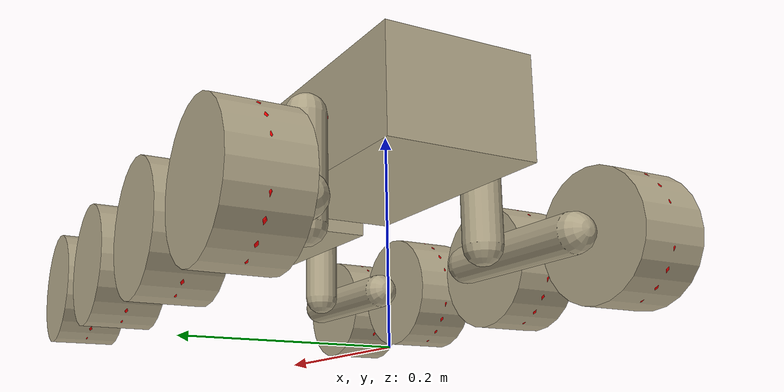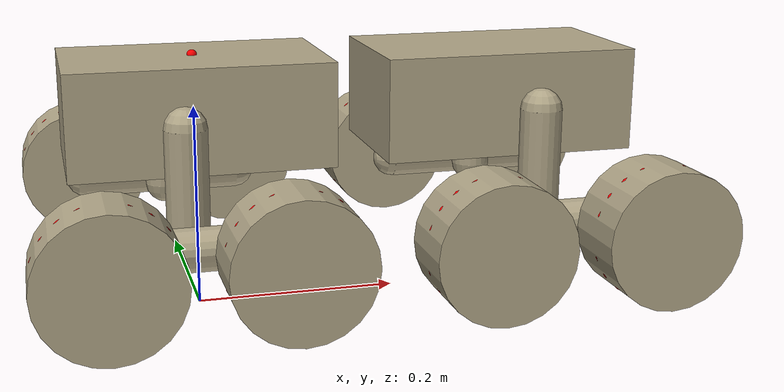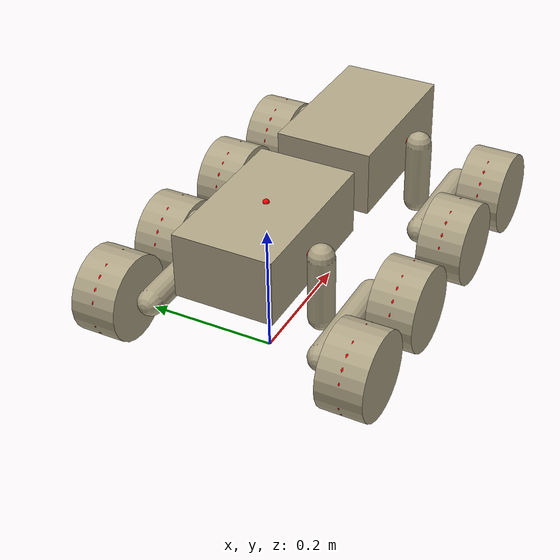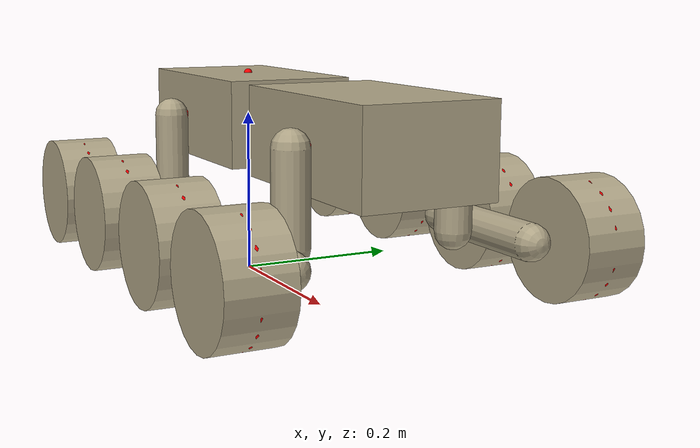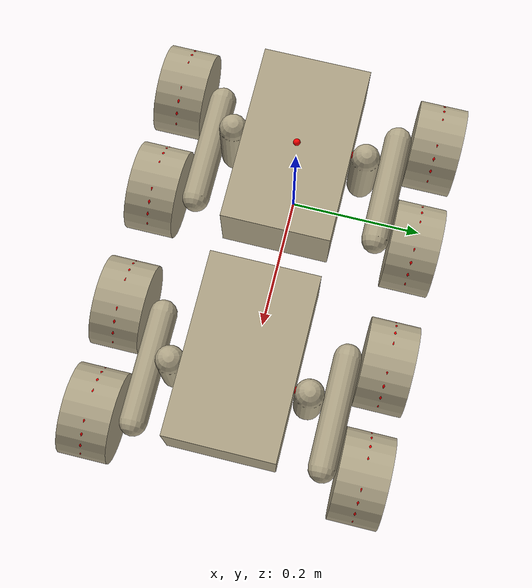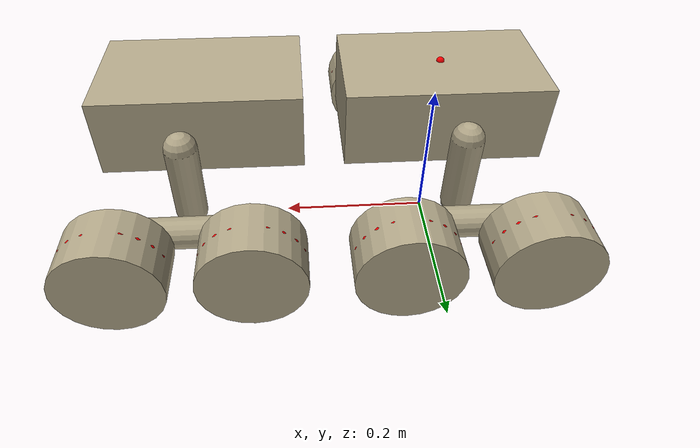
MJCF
<mujoco model="MuJoCo Model">
  <compiler angle="radian"/>

  <option iterations="3" ls_iterations="5" timestep=".002" integrator="Euler">
    <flag eulerdamp="disable"/>
  </option>

  <default>
  	<geom condim="3" contype="0" conaffinity="0"/>
  </default>

  <worldbody>
    <body name="torso" pos="0 0 0.2">
      <joint name="torso_joint" type="free" limited="false" actuatorfrclimited="false"/>
      <site name="torso_site" pos="0 0 0.05" type="sphere" rgba="1 0 0 1"/>
      <geom size="0.125 0.075 0.05" type="box" mass="10" rgba="0.694118 0.65098 0.533333 1" contype="0" conaffinity="1"/>
      <body name="torso_left_thigh" pos="-0.02 0.075 0">
        <joint name="torso_left_thigh_joint" pos="0 0 0" axis="0 1 0" armature="0.0072" damping="5"/>
        <geom name="torso_left_thigh_geom" size="0.02 0.05" pos="0 0.02 -0.05" type="capsule" mass="0.5" rgba="0.694118 0.65098 0.533333 1"/>
        <site name="tl_thigh_site" pos="0 0 0" rgba="1 0 0 1"/>
        <body name="torso_left_shin" pos="0 0.06 -0.1">
          <joint name="torso_left_thigh_shin_joint" pos="0 0 0" axis="0 1 0" armature="0.01805" damping="5"/>
          <geom name="torso_left_shin_geom" size="0.02 0.08" quat="0.707107 0 0.707107 0" type="capsule" mass="0.5" rgba="0.694118 0.65098 0.533333 1"/>
          <site name="tl_shin_site" pos="0 0 0" rgba="1 0 0 1"/>
          <body name="torso_left_front_wheel" pos="0.08 0.055 0">
            <geom name="torso_left_front_wheel_geom" size="0.065 0.035" quat="0.707107 0.707107 0 0" type="cylinder" solref="0.2 0.5" mass="0.5" rgba="0.694118 0.65098 0.533333 1" contype="0" conaffinity="1"/>
            <site name="tlf_wheel_site" pos="0 0 0" size="0.065 0.065 0.035" quat="0.707107 0.707107 0 0" type="ellipsoid" rgba="1 0 0 1"/>
          </body>
          <body name="torso_left_rear_wheel" pos="-0.08 0.055 0">
            <geom name="torso_left_rear_wheel_geom" size="0.065 0.035" quat="0.707107 0.707107 0 0" type="cylinder" solref="0.2 0.5" mass="0.5" rgba="0.694118 0.65098 0.533333 1" contype="0" conaffinity="1"/>
            <site name="tlr_wheel_site" pos="0 0 0" size="0.065 0.065 0.035" quat="0.707107 0.707107 0 0" type="ellipsoid" rgba="1 0 0 1"/>
          </body>
        </body>
      </body>
      <body name="torso_right_thigh" pos="-0.02 -0.075 0">
        <joint name="torso_right_thigh_joint" pos="0 0 0" axis="0 1 0" armature="0.0072" damping="5"/>
        <geom name="torso_right_thigh_geom" size="0.02 0.05" pos="0 -0.02 -0.05" type="capsule" mass="0.5" rgba="0.694118 0.65098 0.533333 1"/>
        <site name="tr_thigh_site" pos="0 0 0" rgba="1 0 0 1"/>
        <body name="torso_right_shin" pos="0 -0.06 -0.1">
          <joint name="torso_right_thigh_shin_joint" pos="0 0 0" axis="0 1 0" armature="0.01805" damping="5"/>
          <geom name="torso_right_shin_geom" size="0.02 0.08" quat="0.707107 0 0.707107 0" type="capsule" mass="0.5" rgba="0.694118 0.65098 0.533333 1"/>
          <site name="tr_shin_site" pos="0 0 0" rgba="1 0 0 1"/>
          <body name="torso_right_front_wheel" pos="0.08 -0.055 0">
            <geom name="torso_right_front_wheel_geom" size="0.065 0.035" quat="0.707107 0.707107 0 0" type="cylinder" solref="0.2 0.5" mass="0.5" rgba="0.694118 0.65098 0.533333 1" contype="0" conaffinity="1"/>
            <site name="trf_wheel_site" pos="0 0 0" size="0.065 0.065 0.035" quat="0.707107 0.707107 0 0" type="ellipsoid" rgba="1 0 0 1"/>
          </body>
          <body name="torso_right_rear_wheel" pos="-0.08 -0.055 0">
            <geom name="torso_right_rear_wheel_geom" size="0.065 0.035" quat="0.707107 0.707107 0 0" type="cylinder" solref="0.2 0.5" mass="0.5" rgba="0.694118 0.65098 0.533333 1" contype="0" conaffinity="1"/>
            <site name="trr_wheel_site" pos="0 0 0" size="0.065 0.065 0.035" quat="0.707107 0.707107 0 0" type="ellipsoid" rgba="1 0 0 1"/>
          </body>
        </body>
      </body>
      <body name="head" pos="0.3 0 0">
        <geom size="0.125 0.075 0.05" type="box" mass="10" rgba="0.694118 0.65098 0.533333 1" contype="0" conaffinity="1"/>
        <body name="head_left_thigh" pos="0.02 0.075 0">
          <joint name="head_left_thigh_joint" pos="0 0 0" axis="0 1 0" armature="0.0072" damping="5"/>
          <geom name="head_left_thigh_geom" size="0.02 0.05" pos="0 0.02 -0.05" type="capsule" mass="0.5" rgba="0.694118 0.65098 0.533333 1"/>
          <site name="hl_thigh_site" pos="0 0 0" rgba="1 0 0 1"/>
          <body name="head_left_shin" pos="0 0.06 -0.1">
            <joint name="head_left_thigh_shin_joint" pos="0 0 0" axis="0 1 0" armature="0.01805" damping="5"/>
            <geom name="head_left_shin_geom" size="0.02 0.08" quat="0.707107 0 0.707107 0" type="capsule" mass="0.5" rgba="0.694118 0.65098 0.533333 1"/>
            <site name="hl_shin_site" pos="0 0 0" rgba="1 0 0 1"/>
            <body name="head_left_front_wheel" pos="0.08 0.055 0">
              <geom name="head_left_front_wheel_geom" size="0.065 0.035" quat="0.707107 0.707107 0 0" type="cylinder" solref="0.2 0.5" mass="0.5" rgba="0.694118 0.65098 0.533333 1" contype="0" conaffinity="1"/>
              <site name="hlf_wheel_site" pos="0 0 0" size="0.065 0.065 0.035" quat="0.707107 0.707107 0 0" type="ellipsoid" rgba="1 0 0 1"/>
            </body>
            <body name="head_left_rear_wheel" pos="-0.08 0.055 0">
              <geom name="head_left_rear_wheel_geom" size="0.065 0.035" quat="0.707107 0.707107 0 0" type="cylinder" solref="0.2 0.5" mass="0.5" rgba="0.694118 0.65098 0.533333 1" contype="0" conaffinity="1"/>
              <site name="hlr_wheel_site" pos="0 0 0" size="0.065 0.065 0.035" quat="0.707107 0.707107 0 0" type="ellipsoid" rgba="1 0 0 1"/>
            </body>
          </body>
        </body>
        <body name="head_right_thigh" pos="0.02 -0.075 0">
          <joint name="head_right_thigh_joint" pos="0 0 0" axis="0 1 0" armature="0.0072" damping="5"/>
          <geom name="head_right_thigh_geom" size="0.02 0.05" pos="0 -0.02 -0.05" type="capsule" mass="0.5" rgba="0.694118 0.65098 0.533333 1"/>
          <site name="hr_thigh_site" pos="0 0 0" rgba="1 0 0 1"/>
          <body name="head_right_shin" pos="0 -0.06 -0.1">
            <joint name="head_right_thigh_shin_joint" pos="0 0 0" axis="0 1 0" armature="0.01805" damping="5"/>
            <geom name="head_right_shin_geom" size="0.02 0.08" quat="0.707107 0 0.707107 0" type="capsule" mass="0.5" rgba="0.694118 0.65098 0.533333 1"/>
            <site name="hr_shin_site" pos="0 0 0" rgba="1 0 0 1"/>
            <body name="head_right_front_wheel" pos="0.08 -0.055 0">
              <geom name="head_right_front_wheel_geom" size="0.065 0.035" quat="0.707107 0.707107 0 0" type="cylinder" solref="0.2 0.5" mass="0.5" rgba="0.694118 0.65098 0.533333 1" contype="0" conaffinity="1"/>
              <site name="hrf_wheel_site" pos="0 0 0" size="0.065 0.065 0.035" quat="0.707107 0.707107 0 0" type="ellipsoid" rgba="1 0 0 1"/>
            </body>
            <body name="head_right_rear_wheel" pos="-0.08 -0.055 0">
              <geom name="head_right_rear_wheel_geom" size="0.065 0.035" quat="0.707107 0.707107 0 0" type="cylinder" solref="0.2 0.5" mass="0.5" rgba="0.694118 0.65098 0.533333 1" contype="0" conaffinity="1"/>
              <site name="hrr_wheel_site" pos="0 0 0" size="0.065 0.065 0.035" quat="0.707107 0.707107 0 0" type="ellipsoid" rgba="1 0 0 1"/>
            </body>
          </body>
        </body>
      </body>
    </body>
  </worldbody>

  <actuator>
    <general name="bl_hip" joint="torso_left_thigh_joint"/>
    <general name="bl_knee" joint="torso_left_thigh_shin_joint"/>
    <general name="br_hip" joint="torso_right_thigh_joint"/>
    <general name="br_knee" joint="torso_right_thigh_shin_joint"/>
    <general name="fl_hip" joint="head_left_thigh_joint"/>
    <general name="fl_knee" joint="head_left_thigh_shin_joint"/>
    <general name="fr_hip" joint="head_right_thigh_joint"/>
    <general name="fr_knee" joint="head_right_thigh_shin_joint"/>
  </actuator>

    <!-- key frame has 0,0 for wheel sites because the bodies have the positions fixed/initialized -->
    <sensor>
    	<framezaxis objtype="site" objname="torso_site" name="upvector"/>
    	<gyro site="torso_site" name="gyro"/>
    	<velocimeter site="torso_site" name="local_linvel"/>
    </sensor>
    <keyframe>
      <key name="home"
        qpos="0 0 0.1875 1 0 0 0
              0 0
              0 0
              0 0
              0 0"
        ctrl="0 0
              0 0
              0 0
              0 0"/>
      <key name="flat"
        qpos='0 0 0.05 1 0 0 0 1.71253 -1.71287 1.71253 -1.71287 -1.71253 1.71287 -1.71253 1.71287'
        ctrl="0 0
              0 0
              0 0
              0 0"/>
      <key name="flat_up"
        qpos='0.0898423 -0.0025112 0.05 1 0 0 0 3.14 3.14 3.14 3.14 3.14 3.14 3.14 3.14'
        ctrl="0 0
              0 0
              0 0
              0 0"/>
    </keyframe>
        <!-- qpos='0.0898423 -0.0025112 0.05 1 0 0 0 3.62333 -5.46591 3.62333 -5.46591 3.62333 -5.46591 3.62333 -5.46591 ' -->

</mujoco>
